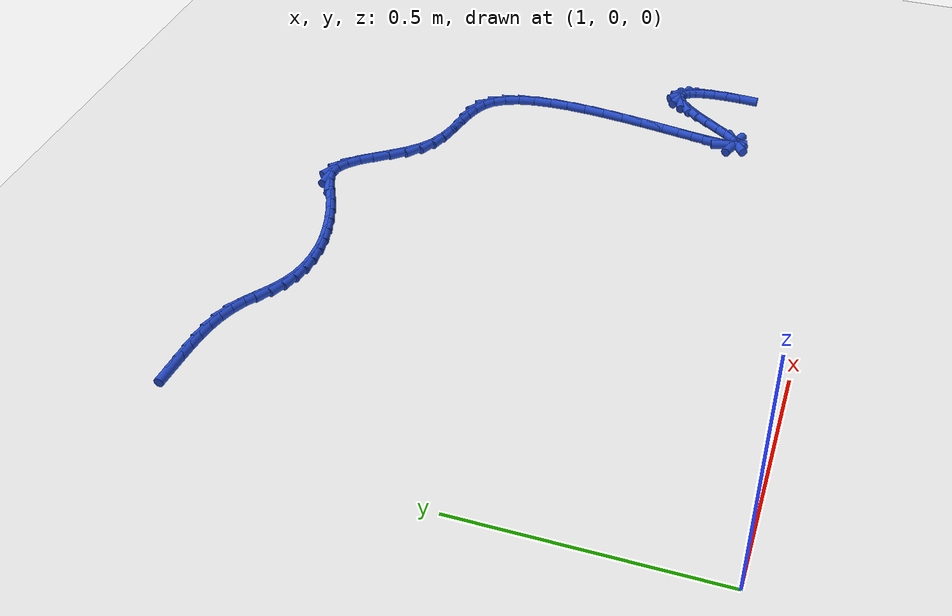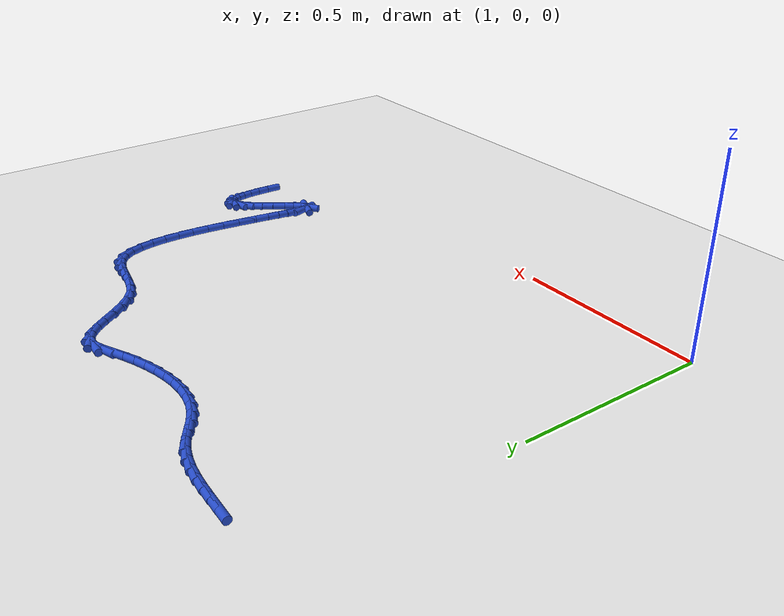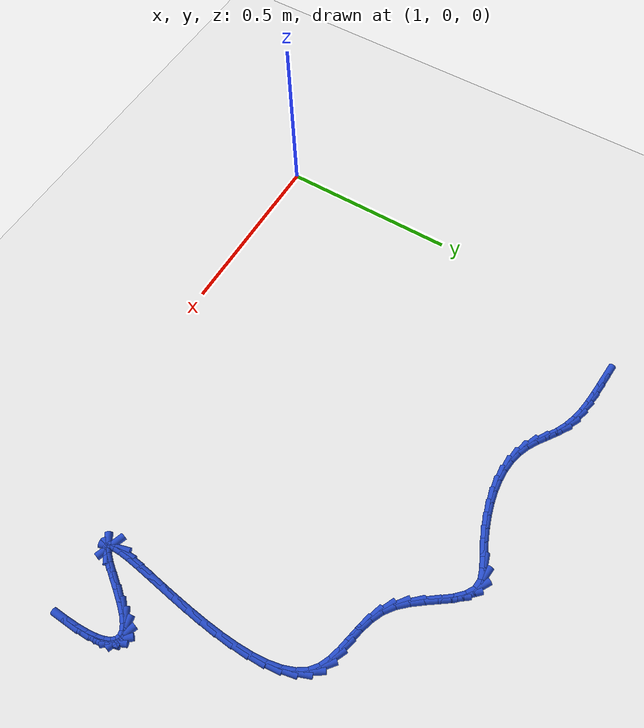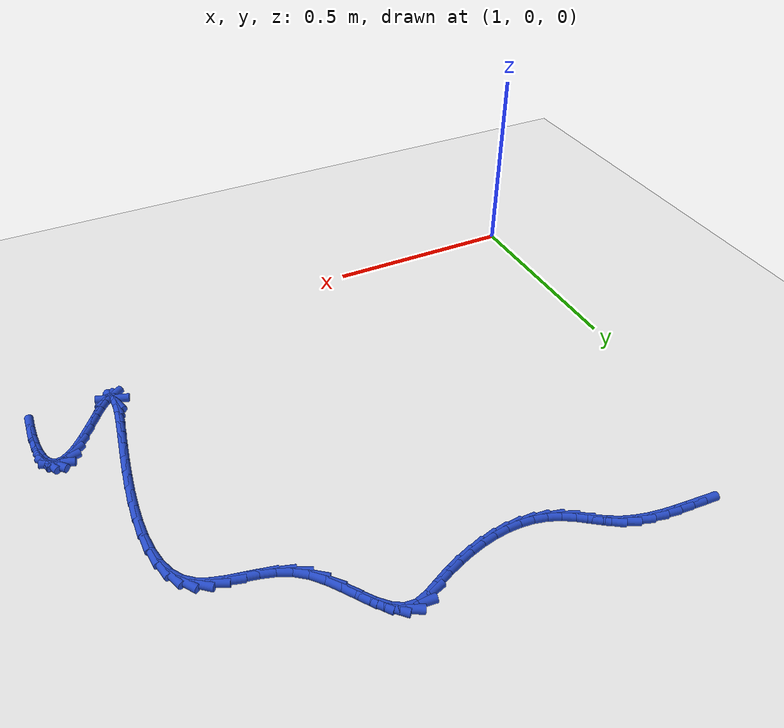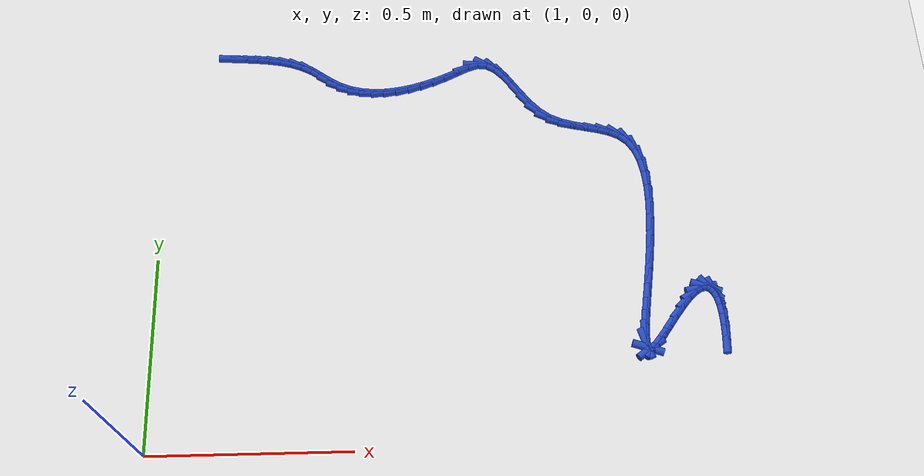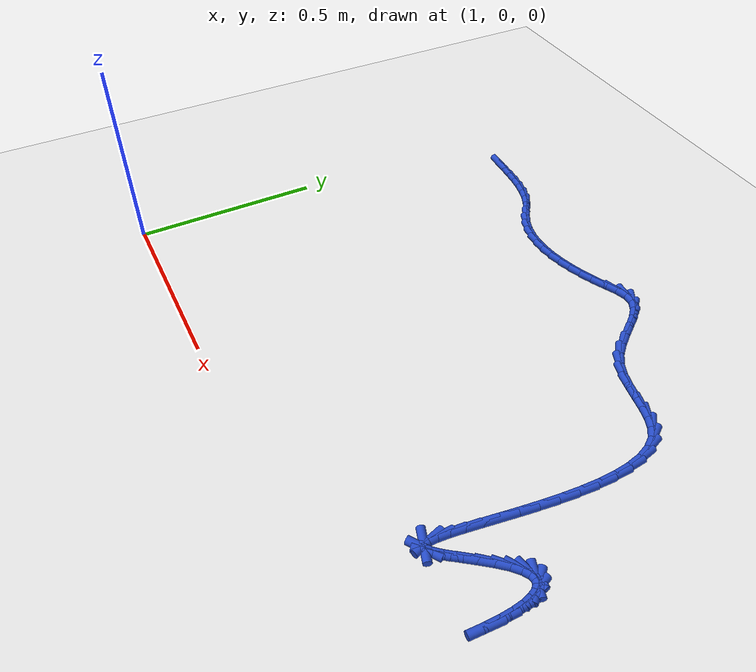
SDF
<sdf version="1.6">
 <world name="default">
  <model name="ground_plane">
   <static>1</static>
   <link name="link">
    <collision name="collision">
     <geometry><plane><normal>0 0 1</normal><size>100 100</size></plane></geometry>
     <surface><friction><ode><mu>100</mu><mu2>50</mu2></ode></friction></surface>
    </collision>
    <visual name="visual">
     <cast_shadows>0</cast_shadows>
     <geometry><plane><normal>0 0 1</normal><size>100 100</size></plane></geometry>
     <material>
      <script><uri>file://media/materials/scripts/gazebo.material</uri><name>Gazebo/WhiteGlow</name></script>
     </material>
    </visual>
   </link>
  </model>
  <model name="line">
   <link name="link_70">
    <pose>1.167677235391699 1.0859388780211932 0.01 0 1.57 -0.06432021495907078</pose>
    <collision name="collision">
     <geometry><cylinder><radius>0.01</radius><length>0.08</length></cylinder></geometry>
    </collision>
    <visual name="visual">
     <material>
      <script><name>Gazebo/Blue</name><uri>file://media/materials/scripts/gazebo.material</uri></script>
     </material>
     <geometry><cylinder><radius>0.01</radius><length>0.08</length></cylinder></geometry>
    </visual>
   </link>
   <link name="link_71">
    <pose>1.1999518683395567 1.0838600992029075 0.01 0 1.57 -0.07359919443537388</pose>
    <collision name="collision">
     <geometry><cylinder><radius>0.01</radius><length>0.08</length></cylinder></geometry>
    </collision>
    <visual name="visual">
     <material>
      <script><name>Gazebo/Blue</name><uri>file://media/materials/scripts/gazebo.material</uri></script>
     </material>
     <geometry><cylinder><radius>0.01</radius><length>0.08</length></cylinder></geometry>
    </visual>
   </link>
   <link name="link_72">
    <pose>1.2320273371376245 1.0814950987178125 0.01 0 1.57 -0.10448683362083987</pose>
    <collision name="collision">
     <geometry><cylinder><radius>0.01</radius><length>0.08</length></cylinder></geometry>
    </collision>
    <visual name="visual">
     <material>
      <script><name>Gazebo/Blue</name><uri>file://media/materials/scripts/gazebo.material</uri></script>
     </material>
     <geometry><cylinder><radius>0.01</radius><length>0.08</length></cylinder></geometry>
    </visual>
   </link>
   <link name="link_73">
    <pose>1.2636611730492453 1.0781776979998168 0.01 0 1.57 -0.15815185248083413</pose>
    <collision name="collision">
     <geometry><cylinder><radius>0.01</radius><length>0.08</length></cylinder></geometry>
    </collision>
    <visual name="visual">
     <material>
      <script><name>Gazebo/Blue</name><uri>file://media/materials/scripts/gazebo.material</uri></script>
     </material>
     <geometry><cylinder><radius>0.01</radius><length>0.08</length></cylinder></geometry>
    </visual>
   </link>
   <link name="link_74">
    <pose>1.2946109073377632 1.0732417184828285 0.01 0 1.57 -0.2360229209756469</pose>
    <collision name="collision">
     <geometry><cylinder><radius>0.01</radius><length>0.08</length></cylinder></geometry>
    </collision>
    <visual name="visual">
     <material>
      <script><name>Gazebo/Blue</name><uri>file://media/materials/scripts/gazebo.material</uri></script>
     </material>
     <geometry><cylinder><radius>0.01</radius><length>0.08</length></cylinder></geometry>
    </visual>
   </link>
   <link name="link_75">
    <pose>1.3246340712665203 1.0660209816007555 0.01 0 1.57 -0.3389185575241329</pose>
    <collision name="collision">
     <geometry><cylinder><radius>0.01</radius><length>0.08</length></cylinder></geometry>
    </collision>
    <visual name="visual">
     <material>
      <script><name>Gazebo/Blue</name><uri>file://media/materials/scripts/gazebo.material</uri></script>
     </material>
     <geometry><cylinder><radius>0.01</radius><length>0.08</length></cylinder></geometry>
    </visual>
   </link>
   <link name="link_76">
    <pose>1.3534881960988607 1.055849308787506 0.01 0 1.57 -0.4656013232835735</pose>
    <collision name="collision">
     <geometry><cylinder><radius>0.01</radius><length>0.08</length></cylinder></geometry>
    </collision>
    <visual name="visual">
     <material>
      <script><name>Gazebo/Blue</name><uri>file://media/materials/scripts/gazebo.material</uri></script>
     </material>
     <geometry><cylinder><radius>0.01</radius><length>0.08</length></cylinder></geometry>
    </visual>
   </link>
   <link name="link_77">
    <pose>1.3809309371953309 1.0420608535276892 0.01 0 1.57 -0.5839135997227006</pose>
    <collision name="collision">
     <geometry><cylinder><radius>0.01</radius><length>0.08</length></cylinder></geometry>
    </collision>
    <visual name="visual">
     <material>
      <script><name>Gazebo/Blue</name><uri>file://media/materials/scripts/gazebo.material</uri></script>
     </material>
     <geometry><cylinder><radius>0.01</radius><length>0.08</length></cylinder></geometry>
    </visual>
   </link>
   <link name="link_78">
    <pose>1.407028750241503 1.0248160358280516 0.01 0 1.57 -0.6075638454459243</pose>
    <collision name="collision">
     <geometry><cylinder><radius>0.01</radius><length>0.08</length></cylinder></geometry>
    </collision>
    <visual name="visual">
     <material>
      <script><name>Gazebo/Blue</name><uri>file://media/materials/scripts/gazebo.material</uri></script>
     </material>
     <geometry><cylinder><radius>0.01</radius><length>0.08</length></cylinder></geometry>
    </visual>
   </link>
   <link name="link_79">
    <pose>1.4328222447974863 1.0068818491627411 0.01 0 1.57 -0.5225139036632529</pose>
    <collision name="collision">
     <geometry><cylinder><radius>0.01</radius><length>0.08</length></cylinder></geometry>
    </collision>
    <visual name="visual">
     <material>
      <script><name>Gazebo/Blue</name><uri>file://media/materials/scripts/gazebo.material</uri></script>
     </material>
     <geometry><cylinder><radius>0.01</radius><length>0.08</length></cylinder></geometry>
    </visual>
   </link>
   <link name="link_80">
    <pose>1.4595286845425166 0.9915014855766697 0.01 0 1.57 -0.37351492068142533</pose>
    <collision name="collision">
     <geometry><cylinder><radius>0.01</radius><length>0.08</length></cylinder></geometry>
    </collision>
    <visual name="visual">
     <material>
      <script><name>Gazebo/Blue</name><uri>file://media/materials/scripts/gazebo.material</uri></script>
     </material>
     <geometry><cylinder><radius>0.01</radius><length>0.08</length></cylinder></geometry>
    </visual>
   </link>
   <link name="link_81">
    <pose>1.487758761377889 0.980437768513121 0.01 0 1.57 -0.23068353862415075</pose>
    <collision name="collision">
     <geometry><cylinder><radius>0.01</radius><length>0.08</length></cylinder></geometry>
    </collision>
    <visual name="visual">
     <material>
      <script><name>Gazebo/Blue</name><uri>file://media/materials/scripts/gazebo.material</uri></script>
     </material>
     <geometry><cylinder><radius>0.01</radius><length>0.08</length></cylinder></geometry>
    </visual>
   </link>
   <link name="link_82">
    <pose>1.517320572390055 0.9734947488398401 0.01 0 1.57 -0.10251683360979459</pose>
    <collision name="collision">
     <geometry><cylinder><radius>0.01</radius><length>0.08</length></cylinder></geometry>
    </collision>
    <visual name="visual">
     <material>
      <script><name>Gazebo/Blue</name><uri>file://media/materials/scripts/gazebo.material</uri></script>
     </material>
     <geometry><cylinder><radius>0.01</radius><length>0.08</length></cylinder></geometry>
    </visual>
   </link>
   <link name="link_83">
    <pose>1.5479670778457508 0.9703419132729499 0.01 0 1.57 0.0097453938833422</pose>
    <collision name="collision">
     <geometry><cylinder><radius>0.01</radius><length>0.08</length></cylinder></geometry>
    </collision>
    <visual name="visual">
     <material>
      <script><name>Gazebo/Blue</name><uri>file://media/materials/scripts/gazebo.material</uri></script>
     </material>
     <geometry><cylinder><radius>0.01</radius><length>0.08</length></cylinder></geometry>
    </visual>
   </link>
   <link name="link_84">
    <pose>1.579451238011714 0.9706487485285727 0.01 0 1.57 0.1067174789469536</pose>
    <collision name="collision">
     <geometry><cylinder><radius>0.01</radius><length>0.08</length></cylinder></geometry>
    </collision>
    <visual name="visual">
     <material>
      <script><name>Gazebo/Blue</name><uri>file://media/materials/scripts/gazebo.material</uri></script>
     </material>
     <geometry><cylinder><radius>0.01</radius><length>0.08</length></cylinder></geometry>
    </visual>
   </link>
   <link name="link_85">
    <pose>1.6115260131546827 0.9740847413228311 0.01 0 1.57 0.189998368964307</pose>
    <collision name="collision">
     <geometry><cylinder><radius>0.01</radius><length>0.08</length></cylinder></geometry>
    </collision>
    <visual name="visual">
     <material>
      <script><name>Gazebo/Blue</name><uri>file://media/materials/scripts/gazebo.material</uri></script>
     </material>
     <geometry><cylinder><radius>0.01</radius><length>0.08</length></cylinder></geometry>
    </visual>
   </link>
   <link name="link_86">
    <pose>1.6439443635413944 0.9803193783718478 0.01 0 1.57 0.26152477429173365</pose>
    <collision name="collision">
     <geometry><cylinder><radius>0.01</radius><length>0.08</length></cylinder></geometry>
    </collision>
    <visual name="visual">
     <material>
      <script><name>Gazebo/Blue</name><uri>file://media/materials/scripts/gazebo.material</uri></script>
     </material>
     <geometry><cylinder><radius>0.01</radius><length>0.08</length></cylinder></geometry>
    </visual>
   </link>
   <link name="link_87">
    <pose>1.6764592494385864 0.9890221463917451 0.01 0 1.57 0.32320307183933467</pose>
    <collision name="collision">
     <geometry><cylinder><radius>0.01</radius><length>0.08</length></cylinder></geometry>
    </collision>
    <visual name="visual">
     <material>
      <script><name>Gazebo/Blue</name><uri>file://media/materials/scripts/gazebo.material</uri></script>
     </material>
     <geometry><cylinder><radius>0.01</radius><length>0.08</length></cylinder></geometry>
    </visual>
   </link>
   <link name="link_88">
    <pose>1.7088236311129963 0.9998625320986458 0.01 0 1.57 0.376745642870436</pose>
    <collision name="collision">
     <geometry><cylinder><radius>0.01</radius><length>0.08</length></cylinder></geometry>
    </collision>
    <visual name="visual">
     <material>
      <script><name>Gazebo/Blue</name><uri>file://media/materials/scripts/gazebo.material</uri></script>
     </material>
     <geometry><cylinder><radius>0.01</radius><length>0.08</length></cylinder></geometry>
    </visual>
   </link>
   <link name="link_89">
    <pose>1.740790468831361 1.012510022208672 0.01 0 1.57 0.4236253800464353</pose>
    <collision name="collision">
     <geometry><cylinder><radius>0.01</radius><length>0.08</length></cylinder></geometry>
    </collision>
    <visual name="visual">
     <material>
      <script><name>Gazebo/Blue</name><uri>file://media/materials/scripts/gazebo.material</uri></script>
     </material>
     <geometry><cylinder><radius>0.01</radius><length>0.08</length></cylinder></geometry>
    </visual>
   </link>
   <link name="link_90">
    <pose>1.772112722860419 1.0266341034379471 0.01 0 1.57 0.44613538518327156</pose>
    <collision name="collision">
     <geometry><cylinder><radius>0.01</radius><length>0.08</length></cylinder></geometry>
    </collision>
    <visual name="visual">
     <material>
      <script><name>Gazebo/Blue</name><uri>file://media/materials/scripts/gazebo.material</uri></script>
     </material>
     <geometry><cylinder><radius>0.01</radius><length>0.08</length></cylinder></geometry>
    </visual>
   </link>
   <link name="link_91">
    <pose>1.802436234553404 1.0411377642081487 0.01 0 1.57 0.3105255203311376</pose>
    <collision name="collision">
     <geometry><cylinder><radius>0.01</radius><length>0.08</length></cylinder></geometry>
    </collision>
    <visual name="visual">
     <material>
      <script><name>Gazebo/Blue</name><uri>file://media/materials/scripts/gazebo.material</uri></script>
     </material>
     <geometry><cylinder><radius>0.01</radius><length>0.08</length></cylinder></geometry>
    </visual>
   </link>
   <link name="link_92">
    <pose>1.830749995467834 1.0502238495988074 0.01 0 1.57 -0.09746514411766825</pose>
    <collision name="collision">
     <geometry><cylinder><radius>0.01</radius><length>0.08</length></cylinder></geometry>
    </collision>
    <visual name="visual">
     <material>
      <script><name>Gazebo/Blue</name><uri>file://media/materials/scripts/gazebo.material</uri></script>
     </material>
     <geometry><cylinder><radius>0.01</radius><length>0.08</length></cylinder></geometry>
    </visual>
   </link>
   <link name="link_93">
    <pose>1.8560949200776367 1.0477457510337969 0.01 0 1.57 -0.5278946006942065</pose>
    <collision name="collision">
     <geometry><cylinder><radius>0.01</radius><length>0.08</length></cylinder></geometry>
    </collision>
    <visual name="visual">
     <material>
      <script><name>Gazebo/Blue</name><uri>file://media/materials/scripts/gazebo.material</uri></script>
     </material>
     <geometry><cylinder><radius>0.01</radius><length>0.08</length></cylinder></geometry>
    </visual>
   </link>
   <link name="link_94">
    <pose>1.8789538271468076 1.034416898045092 0.01 0 1.57 -0.7882934613917355</pose>
    <collision name="collision">
     <geometry><cylinder><radius>0.01</radius><length>0.08</length></cylinder></geometry>
    </collision>
    <visual name="visual">
     <material>
      <script><name>Gazebo/Blue</name><uri>file://media/materials/scripts/gazebo.material</uri></script>
     </material>
     <geometry><cylinder><radius>0.01</radius><length>0.08</length></cylinder></geometry>
    </visual>
   </link>
   <link name="link_95">
    <pose>1.9002413985220488 1.0130057006648725 0.01 0 1.57 -0.9133752519615455</pose>
    <collision name="collision">
     <geometry><cylinder><radius>0.01</radius><length>0.08</length></cylinder></geometry>
    </collision>
    <visual name="visual">
     <material>
      <script><name>Gazebo/Blue</name><uri>file://media/materials/scripts/gazebo.material</uri></script>
     </material>
     <geometry><cylinder><radius>0.01</radius><length>0.08</length></cylinder></geometry>
    </visual>
   </link>
   <link name="link_96">
    <pose>1.9208723957105922 0.9862809479825764 0.01 0 1.57 -0.9509454503430972</pose>
    <collision name="collision">
     <geometry><cylinder><radius>0.01</radius><length>0.08</length></cylinder></geometry>
    </collision>
    <visual name="visual">
     <material>
      <script><name>Gazebo/Blue</name><uri>file://media/materials/scripts/gazebo.material</uri></script>
     </material>
     <geometry><cylinder><radius>0.01</radius><length>0.08</length></cylinder></geometry>
    </visual>
   </link>
   <link name="link_97">
    <pose>1.941761580219671 0.9570114290876394 0.01 0 1.57 -0.9211974970849687</pose>
    <collision name="collision">
     <geometry><cylinder><radius>0.01</radius><length>0.08</length></cylinder></geometry>
    </collision>
    <visual name="visual">
     <material>
      <script><name>Gazebo/Blue</name><uri>file://media/materials/scripts/gazebo.material</uri></script>
     </material>
     <geometry><cylinder><radius>0.01</radius><length>0.08</length></cylinder></geometry>
    </visual>
   </link>
   <link name="link_98">
    <pose>1.9638237135565164 0.9279659330694975 0.01 0 1.57 -0.8232833059798018</pose>
    <collision name="collision">
     <geometry><cylinder><radius>0.01</radius><length>0.08</length></cylinder></geometry>
    </collision>
    <visual name="visual">
     <material>
      <script><name>Gazebo/Blue</name><uri>file://media/materials/scripts/gazebo.material</uri></script>
     </material>
     <geometry><cylinder><radius>0.01</radius><length>0.08</length></cylinder></geometry>
    </visual>
   </link>
   <link name="link_99">
    <pose>1.9879735572283608 0.9019132490175873 0.01 0 1.57 -0.6435216102593425</pose>
    <collision name="collision">
     <geometry><cylinder><radius>0.01</radius><length>0.08</length></cylinder></geometry>
    </collision>
    <visual name="visual">
     <material>
      <script><name>Gazebo/Blue</name><uri>file://media/materials/scripts/gazebo.material</uri></script>
     </material>
     <geometry><cylinder><radius>0.01</radius><length>0.08</length></cylinder></geometry>
    </visual>
   </link>
   <link name="link_100">
    <pose>2.0151009175439656 0.8815668597821206 0.01 0 1.57 -0.4345032702633831</pose>
    <collision name="collision">
     <geometry><cylinder><radius>0.01</radius><length>0.08</length></cylinder></geometry>
    </collision>
    <visual name="visual">
     <material>
      <script><name>Gazebo/Blue</name><uri>file://media/materials/scripts/gazebo.material</uri></script>
     </material>
     <geometry><cylinder><radius>0.01</radius><length>0.08</length></cylinder></geometry>
    </visual>
   </link>
   <link name="link_101">
    <pose>2.0451787317551906 0.8676082635967693 0.01 0 1.57 -0.2888779251546008</pose>
    <collision name="collision">
     <geometry><cylinder><radius>0.01</radius><length>0.08</length></cylinder></geometry>
    </collision>
    <visual name="visual">
     <material>
      <script><name>Gazebo/Blue</name><uri>file://media/materials/scripts/gazebo.material</uri></script>
     </material>
     <geometry><cylinder><radius>0.01</radius><length>0.08</length></cylinder></geometry>
    </visual>
   </link>
   <link name="link_102">
    <pose>2.0770188212823593 0.8581456692053278 0.01 0 1.57 -0.21386921930283637</pose>
    <collision name="collision">
     <geometry><cylinder><radius>0.01</radius><length>0.08</length></cylinder></geometry>
    </collision>
    <visual name="visual">
     <material>
      <script><name>Gazebo/Blue</name><uri>file://media/materials/scripts/gazebo.material</uri></script>
     </material>
     <geometry><cylinder><radius>0.01</radius><length>0.08</length></cylinder></geometry>
    </visual>
   </link>
   <link name="link_103">
    <pose>2.109358347276595 0.8511218216822303 0.01 0 1.57 -0.2073370310446885</pose>
    <collision name="collision">
     <geometry><cylinder><radius>0.01</radius><length>0.08</length></cylinder></geometry>
    </collision>
    <visual name="visual">
     <material>
      <script><name>Gazebo/Blue</name><uri>file://media/materials/scripts/gazebo.material</uri></script>
     </material>
     <geometry><cylinder><radius>0.01</radius><length>0.08</length></cylinder></geometry>
    </visual>
   </link>
   <link name="link_104">
    <pose>2.140934470889024 0.8444794661019117 0.01 0 1.57 -0.2743936753100964</pose>
    <collision name="collision">
     <geometry><cylinder><radius>0.01</radius><length>0.08</length></cylinder></geometry>
    </collision>
    <visual name="visual">
     <material>
      <script><name>Gazebo/Blue</name><uri>file://media/materials/scripts/gazebo.material</uri></script>
     </material>
     <geometry><cylinder><radius>0.01</radius><length>0.08</length></cylinder></geometry>
    </visual>
   </link>
   <link name="link_105">
    <pose>2.170484353270768 0.8361613475388057 0.01 0 1.57 -0.4302321791245286</pose>
    <collision name="collision">
     <geometry><cylinder><radius>0.01</radius><length>0.08</length></cylinder></geometry>
    </collision>
    <visual name="visual">
     <material>
      <script><name>Gazebo/Blue</name><uri>file://media/materials/scripts/gazebo.material</uri></script>
     </material>
     <geometry><cylinder><radius>0.01</radius><length>0.08</length></cylinder></geometry>
    </visual>
   </link>
   <link name="link_106">
    <pose>2.1967451555729522 0.8241102110673474 0.01 0 1.57 -0.6876900865498777</pose>
    <collision name="collision">
     <geometry><cylinder><radius>0.01</radius><length>0.08</length></cylinder></geometry>
    </collision>
    <visual name="visual">
     <material>
      <script><name>Gazebo/Blue</name><uri>file://media/materials/scripts/gazebo.material</uri></script>
     </material>
     <geometry><cylinder><radius>0.01</radius><length>0.08</length></cylinder></geometry>
    </visual>
   </link>
   <link name="link_107">
    <pose>2.218457413465137 0.8062744573495575 0.01 0 1.57 -0.9844398007182035</pose>
    <collision name="collision">
     <geometry><cylinder><radius>0.01</radius><length>0.08</length></cylinder></geometry>
    </collision>
    <visual name="visual">
     <material>
      <script><name>Gazebo/Blue</name><uri>file://media/materials/scripts/gazebo.material</uri></script>
     </material>
     <geometry><cylinder><radius>0.01</radius><length>0.08</length></cylinder></geometry>
    </visual>
   </link>
   <link name="link_108">
    <pose>2.2349055549941736 0.7815140336978087 0.01 0 1.57 -1.211657012602724</pose>
    <collision name="collision">
     <geometry><cylinder><radius>0.01</radius><length>0.08</length></cylinder></geometry>
    </collision>
    <visual name="visual">
     <material>
      <script><name>Gazebo/Blue</name><uri>file://media/materials/scripts/gazebo.material</uri></script>
     </material>
     <geometry><cylinder><radius>0.01</radius><length>0.08</length></cylinder></geometry>
    </visual>
   </link>
   <link name="link_109">
    <pose>2.2465124742353026 0.7505969209584216 0.01 0 1.57 -1.3702455886052223</pose>
    <collision name="collision">
     <geometry><cylinder><radius>0.01</radius><length>0.08</length></cylinder></geometry>
    </collision>
    <visual name="visual">
     <material>
      <script><name>Gazebo/Blue</name><uri>file://media/materials/scripts/gazebo.material</uri></script>
     </material>
     <geometry><cylinder><radius>0.01</radius><length>0.08</length></cylinder></geometry>
    </visual>
   </link>
   <link name="link_110">
    <pose>2.2538441119162878 0.7145308417030873 0.01 0 1.57 -1.4809484052134696</pose>
    <collision name="collision">
     <geometry><cylinder><radius>0.01</radius><length>0.08</length></cylinder></geometry>
    </collision>
    <visual name="visual">
     <material>
      <script><name>Gazebo/Blue</name><uri>file://media/materials/scripts/gazebo.material</uri></script>
     </material>
     <geometry><cylinder><radius>0.01</radius><length>0.08</length></cylinder></geometry>
    </visual>
   </link>
   <link name="link_111">
    <pose>2.2574664087648886 0.6743235185034957 0.01 0 1.57 -1.5597472284159313</pose>
    <collision name="collision">
     <geometry><cylinder><radius>0.01</radius><length>0.08</length></cylinder></geometry>
    </collision>
    <visual name="visual">
     <material>
      <script><name>Gazebo/Blue</name><uri>file://media/materials/scripts/gazebo.material</uri></script>
     </material>
     <geometry><cylinder><radius>0.01</radius><length>0.08</length></cylinder></geometry>
    </visual>
   </link>
   <link name="link_112">
    <pose>2.2579453055088683 0.6309826739313377 0.01 0 1.57 1.524672968426074</pose>
    <collision name="collision">
     <geometry><cylinder><radius>0.01</radius><length>0.08</length></cylinder></geometry>
    </collision>
    <visual name="visual">
     <material>
      <script><name>Gazebo/Blue</name><uri>file://media/materials/scripts/gazebo.material</uri></script>
     </material>
     <geometry><cylinder><radius>0.01</radius><length>0.08</length></cylinder></geometry>
    </visual>
   </link>
   <link name="link_113">
    <pose>2.2558467428759865 0.5855160305583025 0.01 0 1.57 1.4827960921864054</pose>
    <collision name="collision">
     <geometry><cylinder><radius>0.01</radius><length>0.08</length></cylinder></geometry>
    </collision>
    <visual name="visual">
     <material>
      <script><name>Gazebo/Blue</name><uri>file://media/materials/scripts/gazebo.material</uri></script>
     </material>
     <geometry><cylinder><radius>0.01</radius><length>0.08</length></cylinder></geometry>
    </visual>
   </link>
   <link name="link_114">
    <pose>2.2517366615940073 0.5389313109560827 0.01 0 1.57 1.452375589225816</pose>
    <collision name="collision">
     <geometry><cylinder><radius>0.01</radius><length>0.08</length></cylinder></geometry>
    </collision>
    <visual name="visual">
     <material>
      <script><name>Gazebo/Blue</name><uri>file://media/materials/scripts/gazebo.material</uri></script>
     </material>
     <geometry><cylinder><radius>0.01</radius><length>0.08</length></cylinder></geometry>
    </visual>
   </link>
   <link name="link_115">
    <pose>2.24618100239069 0.4922362376963674 0.01 0 1.57 1.4311946364611825</pose>
    <collision name="collision">
     <geometry><cylinder><radius>0.01</radius><length>0.08</length></cylinder></geometry>
    </collision>
    <visual name="visual">
     <material>
      <script><name>Gazebo/Blue</name><uri>file://media/materials/scripts/gazebo.material</uri></script>
     </material>
     <geometry><cylinder><radius>0.01</radius><length>0.08</length></cylinder></geometry>
    </visual>
   </link>
   <link name="link_116">
    <pose>2.239745705993796 0.44643853335084727 0.01 0 1.57 1.4182297211224637</pose>
    <collision name="collision">
     <geometry><cylinder><radius>0.01</radius><length>0.08</length></cylinder></geometry>
    </collision>
    <visual name="visual">
     <material>
      <script><name>Gazebo/Blue</name><uri>file://media/materials/scripts/gazebo.material</uri></script>
     </material>
     <geometry><cylinder><radius>0.01</radius><length>0.08</length></cylinder></geometry>
    </visual>
   </link>
   <link name="link_117">
    <pose>2.232996713131088 0.4025459204912122 0.01 0 1.57 1.4135694367457856</pose>
    <collision name="collision">
     <geometry><cylinder><radius>0.01</radius><length>0.08</length></cylinder></geometry>
    </collision>
    <visual name="visual">
     <material>
      <script><name>Gazebo/Blue</name><uri>file://media/materials/scripts/gazebo.material</uri></script>
     </material>
     <geometry><cylinder><radius>0.01</radius><length>0.08</length></cylinder></geometry>
    </visual>
   </link>
   <link name="link_118">
    <pose>2.2264999645303267 0.3615661216891538 0.01 0 1.57 1.4187496769047672</pose>
    <collision name="collision">
     <geometry><cylinder><radius>0.01</radius><length>0.08</length></cylinder></geometry>
    </collision>
    <visual name="visual">
     <material>
      <script><name>Gazebo/Blue</name><uri>file://media/materials/scripts/gazebo.material</uri></script>
     </material>
     <geometry><cylinder><radius>0.01</radius><length>0.08</length></cylinder></geometry>
    </visual>
   </link>
   <link name="link_119">
    <pose>2.220821400919274 0.32450685951636205 0.01 0 1.57 1.4379297170958334</pose>
    <collision name="collision">
     <geometry><cylinder><radius>0.01</radius><length>0.08</length></cylinder></geometry>
    </collision>
    <visual name="visual">
     <material>
      <script><name>Gazebo/Blue</name><uri>file://media/materials/scripts/gazebo.material</uri></script>
     </material>
     <geometry><cylinder><radius>0.01</radius><length>0.08</length></cylinder></geometry>
    </visual>
   </link>
   <link name="link_120">
    <pose>2.216526963025691 0.2923758565445273 0.01 0 1.57 1.4815372986770246</pose>
    <collision name="collision">
     <geometry><cylinder><radius>0.01</radius><length>0.08</length></cylinder></geometry>
    </collision>
    <visual name="visual">
     <material>
      <script><name>Gazebo/Blue</name><uri>file://media/materials/scripts/gazebo.material</uri></script>
     </material>
     <geometry><cylinder><radius>0.01</radius><length>0.08</length></cylinder></geometry>
    </visual>
   </link>
   <link name="link_121">
    <pose>2.2141825915773405 0.2661808353453401 0.01 0 1.57 -1.5618810313600058</pose>
    <collision name="collision">
     <geometry><cylinder><radius>0.01</radius><length>0.08</length></cylinder></geometry>
    </collision>
    <visual name="visual">
     <material>
      <script><name>Gazebo/Blue</name><uri>file://media/materials/scripts/gazebo.material</uri></script>
     </material>
     <geometry><cylinder><radius>0.01</radius><length>0.08</length></cylinder></geometry>
    </visual>
   </link>
   <link name="link_122">
    <pose>2.2143542273019814 0.24692951849049047 0.01 0 1.57 -1.2904488622333625</pose>
    <collision name="collision">
     <geometry><cylinder><radius>0.01</radius><length>0.08</length></cylinder></geometry>
    </collision>
    <visual name="visual">
     <material>
      <script><name>Gazebo/Blue</name><uri>file://media/materials/scripts/gazebo.material</uri></script>
     </material>
     <geometry><cylinder><radius>0.01</radius><length>0.08</length></cylinder></geometry>
    </visual>
   </link>
   <link name="link_123">
    <pose>2.217607810927377 0.2356296285516696 0.01 0 1.57 -0.3269901799403118</pose>
    <collision name="collision">
     <geometry><cylinder><radius>0.01</radius><length>0.08</length></cylinder></geometry>
    </collision>
    <visual name="visual">
     <material>
      <script><name>Gazebo/Blue</name><uri>file://media/materials/scripts/gazebo.material</uri></script>
     </material>
     <geometry><cylinder><radius>0.01</radius><length>0.08</length></cylinder></geometry>
    </visual>
   </link>
   <link name="link_124">
    <pose>2.2245092831812885 0.23328888810056758 0.01 0 1.57 0.6013313619927433</pose>
    <collision name="collision">
     <geometry><cylinder><radius>0.01</radius><length>0.08</length></cylinder></geometry>
    </collision>
    <visual name="visual">
     <material>
      <script><name>Gazebo/Blue</name><uri>file://media/materials/scripts/gazebo.material</uri></script>
     </material>
     <geometry><cylinder><radius>0.01</radius><length>0.08</length></cylinder></geometry>
    </visual>
   </link>
   <link name="link_125">
    <pose>2.2356245847914766 0.24091501970887486 0.01 0 1.57 0.8531204164034374</pose>
    <collision name="collision">
     <geometry><cylinder><radius>0.01</radius><length>0.08</length></cylinder></geometry>
    </collision>
    <visual name="visual">
     <material>
      <script><name>Gazebo/Blue</name><uri>file://media/materials/scripts/gazebo.material</uri></script>
     </material>
     <geometry><cylinder><radius>0.01</radius><length>0.08</length></cylinder></geometry>
    </visual>
   </link>
   <link name="link_126">
    <pose>2.2511950219944086 0.2587513001006548 0.01 0 1.57 0.9244258005213178</pose>
    <collision name="collision">
     <geometry><cylinder><radius>0.01</radius><length>0.08</length></cylinder></geometry>
    </collision>
    <visual name="visual">
     <material>
      <script><name>Gazebo/Blue</name><uri>file://media/materials/scripts/gazebo.material</uri></script>
     </material>
     <geometry><cylinder><radius>0.01</radius><length>0.08</length></cylinder></geometry>
    </visual>
   </link>
   <link name="link_127">
    <pose>2.2700745591588016 0.28377410812412857 0.01 0 1.57 0.94013925802719</pose>
    <collision name="collision">
     <geometry><cylinder><radius>0.01</radius><length>0.08</length></cylinder></geometry>
    </collision>
    <visual name="visual">
     <material>
      <script><name>Gazebo/Blue</name><uri>file://media/materials/scripts/gazebo.material</uri></script>
     </material>
     <geometry><cylinder><radius>0.01</radius><length>0.08</length></cylinder></geometry>
    </visual>
   </link>
   <link name="link_128">
    <pose>2.2907466267037875 0.31208729322364637 0.01 0 1.57 0.9234380614674353</pose>
    <collision name="collision">
     <geometry><cylinder><radius>0.01</radius><length>0.08</length></cylinder></geometry>
    </collision>
    <visual name="visual">
     <material>
      <script><name>Gazebo/Blue</name><uri>file://media/materials/scripts/gazebo.material</uri></script>
     </material>
     <geometry><cylinder><radius>0.01</radius><length>0.08</length></cylinder></geometry>
    </visual>
   </link>
   <link name="link_129">
    <pose>2.3116946513305225 0.33979469608850765 0.01 0 1.57 0.8668351015489573</pose>
    <collision name="collision">
     <geometry><cylinder><radius>0.01</radius><length>0.08</length></cylinder></geometry>
    </collision>
    <visual name="visual">
     <material>
      <script><name>Gazebo/Blue</name><uri>file://media/materials/scripts/gazebo.material</uri></script>
     </material>
     <geometry><cylinder><radius>0.01</radius><length>0.08</length></cylinder></geometry>
    </visual>
   </link>
   <link name="link_130">
    <pose>2.331405228471855 0.3630086650659153 0.01 0 1.57 0.746231946981732</pose>
    <collision name="collision">
     <geometry><cylinder><radius>0.01</radius><length>0.08</length></cylinder></geometry>
    </collision>
    <visual name="visual">
     <material>
      <script><name>Gazebo/Blue</name><uri>file://media/materials/scripts/gazebo.material</uri></script>
     </material>
     <geometry><cylinder><radius>0.01</radius><length>0.08</length></cylinder></geometry>
    </visual>
   </link>
   <link name="link_131">
    <pose>2.348846569823972 0.3791346293975065 0.01 0 1.57 0.5418993204772946</pose>
    <collision name="collision">
     <geometry><cylinder><radius>0.01</radius><length>0.08</length></cylinder></geometry>
    </collision>
    <visual name="visual">
     <material>
      <script><name>Gazebo/Blue</name><uri>file://media/materials/scripts/gazebo.material</uri></script>
     </material>
     <geometry><cylinder><radius>0.01</radius><length>0.08</length></cylinder></geometry>
    </visual>
   </link>
   <link name="link_132">
    <pose>2.3639803678322675 0.38824539289999094 0.01 0 1.57 0.19110650653443934</pose>
    <collision name="collision">
     <geometry><cylinder><radius>0.01</radius><length>0.08</length></cylinder></geometry>
    </collision>
    <visual name="visual">
     <material>
      <script><name>Gazebo/Blue</name><uri>file://media/materials/scripts/gazebo.material</uri></script>
     </material>
     <geometry><cylinder><radius>0.01</radius><length>0.08</length></cylinder></geometry>
    </visual>
   </link>
   <link name="link_133">
    <pose>2.37689101084701 0.3907431829218313 0.01 0 1.57 -0.33193633508631987</pose>
    <collision name="collision">
     <geometry><cylinder><radius>0.01</radius><length>0.08</length></cylinder></geometry>
    </collision>
    <visual name="visual">
     <material>
      <script><name>Gazebo/Blue</name><uri>file://media/materials/scripts/gazebo.material</uri></script>
     </material>
     <geometry><cylinder><radius>0.01</radius><length>0.08</length></cylinder></geometry>
    </visual>
   </link>
   <link name="link_134">
    <pose>2.387662887218467 0.38703022681149 0.01 0 1.57 -0.8294498047871031</pose>
    <collision name="collision">
     <geometry><cylinder><radius>0.01</radius><length>0.08</length></cylinder></geometry>
    </collision>
    <visual name="visual">
     <material>
      <script><name>Gazebo/Blue</name><uri>file://media/materials/scripts/gazebo.material</uri></script>
     </material>
     <geometry><cylinder><radius>0.01</radius><length>0.08</length></cylinder></geometry>
    </visual>
   </link>
   <link name="link_135">
    <pose>2.396380385296907 0.37750875191742983 0.01 0 1.57 -1.1462716693475</pose>
    <collision name="collision">
     <geometry><cylinder><radius>0.01</radius><length>0.08</length></cylinder></geometry>
    </collision>
    <visual name="visual">
     <material>
      <script><name>Gazebo/Blue</name><uri>file://media/materials/scripts/gazebo.material</uri></script>
     </material>
     <geometry><cylinder><radius>0.01</radius><length>0.08</length></cylinder></geometry>
    </visual>
   </link>
   <link name="link_136">
    <pose>2.403127893432598 0.3625809855881132 0.01 0 1.57 -1.3315417843995734</pose>
    <collision name="collision">
     <geometry><cylinder><radius>0.01</radius><length>0.08</length></cylinder></geometry>
    </collision>
    <visual name="visual">
     <material>
      <script><name>Gazebo/Blue</name><uri>file://media/materials/scripts/gazebo.material</uri></script>
     </material>
     <geometry><cylinder><radius>0.01</radius><length>0.08</length></cylinder></geometry>
    </visual>
   </link>
   <link name="link_137">
    <pose>2.407989799975809 0.34264915517200284 0.01 0 1.57 -1.4466827446704873</pose>
    <collision name="collision">
     <geometry><cylinder><radius>0.01</radius><length>0.08</length></cylinder></geometry>
    </collision>
    <visual name="visual">
     <material>
      <script><name>Gazebo/Blue</name><uri>file://media/materials/scripts/gazebo.material</uri></script>
     </material>
     <geometry><cylinder><radius>0.01</radius><length>0.08</length></cylinder></geometry>
    </visual>
   </link>
   <link name="link_138">
    <pose>2.4110504932768073 0.31811548801756107 0.01 0 1.57 -1.524059930476563</pose>
    <collision name="collision">
     <geometry><cylinder><radius>0.01</radius><length>0.08</length></cylinder></geometry>
    </collision>
    <visual name="visual">
     <material>
      <script><name>Gazebo/Blue</name><uri>file://media/materials/scripts/gazebo.material</uri></script>
     </material>
     <geometry><cylinder><radius>0.01</radius><length>0.08</length></cylinder></geometry>
    </visual>
   </link>
   <link name="link_139">
    <pose>2.4123943616858607 0.2893822114732506 0.01 0 1.57 1.5619259080412935</pose>
    <collision name="collision">
     <geometry><cylinder><radius>0.01</radius><length>0.08</length></cylinder></geometry>
    </collision>
    <visual name="visual">
     <material>
      <script><name>Gazebo/Blue</name><uri>file://media/materials/scripts/gazebo.material</uri></script>
     </material>
     <geometry><cylinder><radius>0.01</radius><length>0.08</length></cylinder></geometry>
    </visual>
   </link>
   <link name="link_140">
    <pose>2.4121057935532386 0.2568515528875334 0.01 0 1.57 1.5197183230513918</pose>
    <collision name="collision">
     <geometry><cylinder><radius>0.01</radius><length>0.08</length></cylinder></geometry>
    </collision>
    <visual name="visual">
     <material>
      <script><name>Gazebo/Blue</name><uri>file://media/materials/scripts/gazebo.material</uri></script>
     </material>
     <geometry><cylinder><radius>0.01</radius><length>0.08</length></cylinder></geometry>
    </visual>
   </link>
  </model>
 </world>
</sdf>
